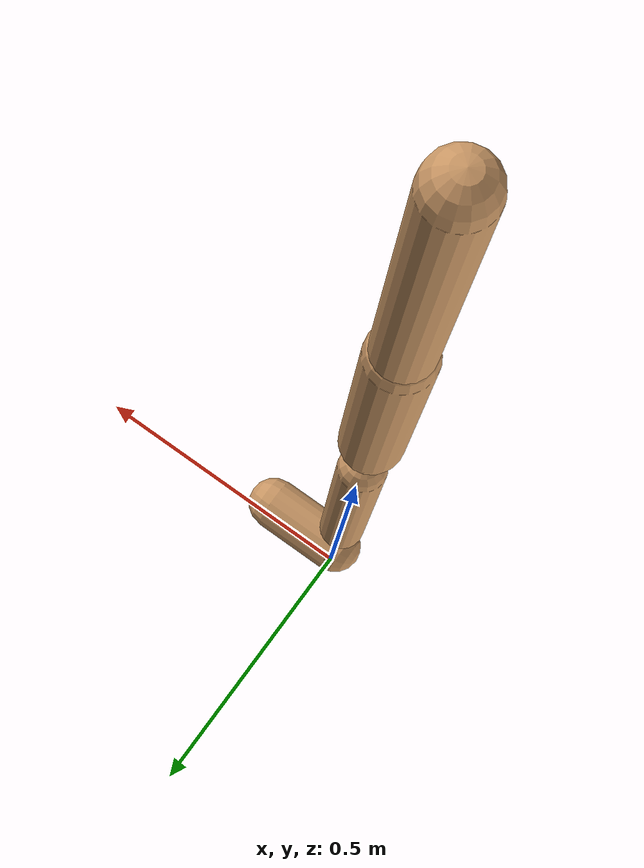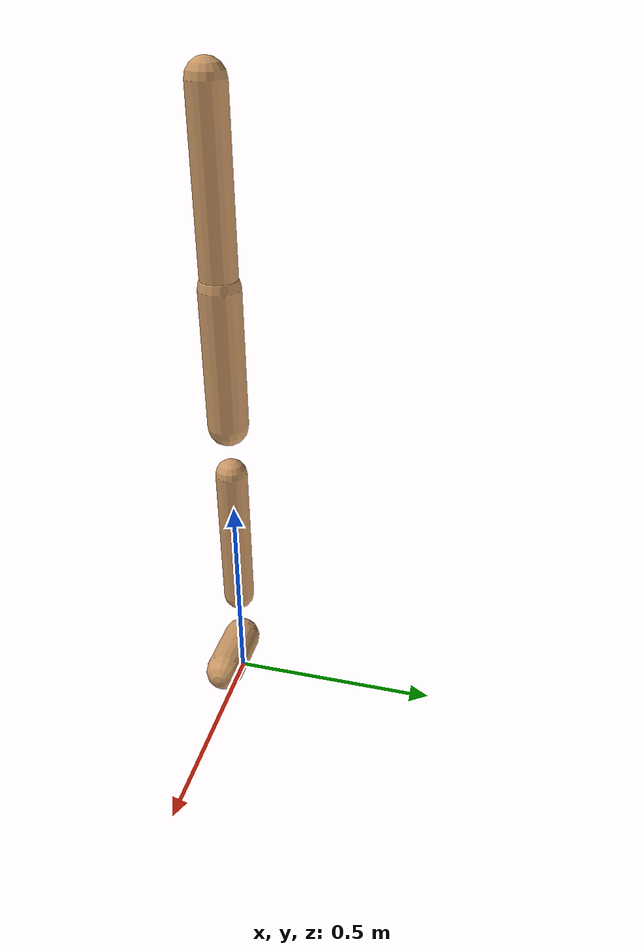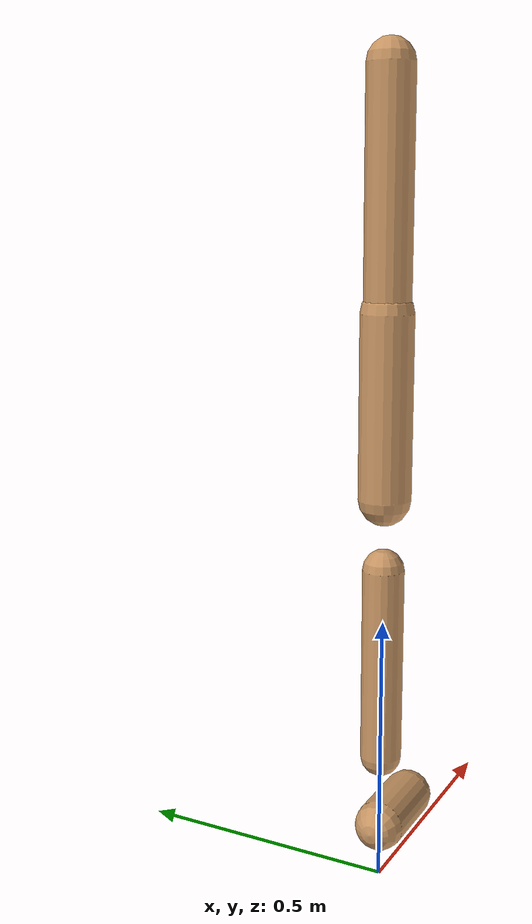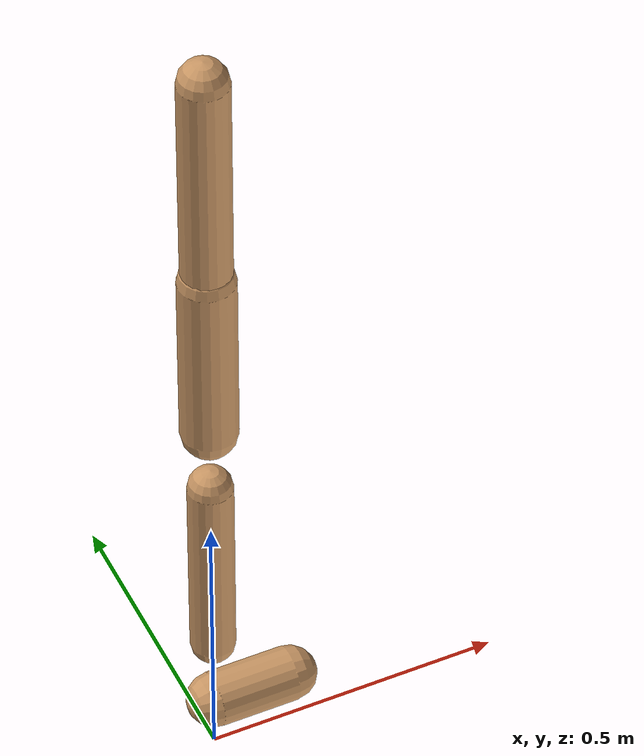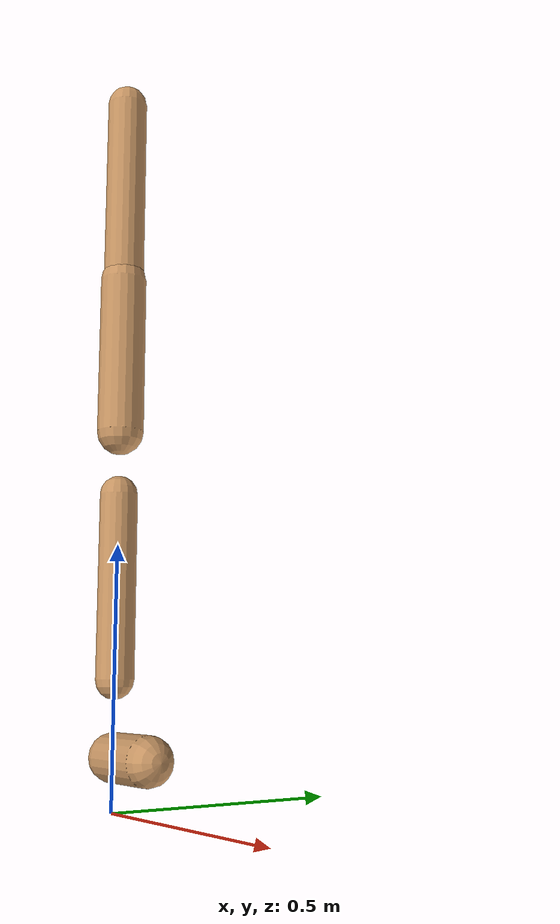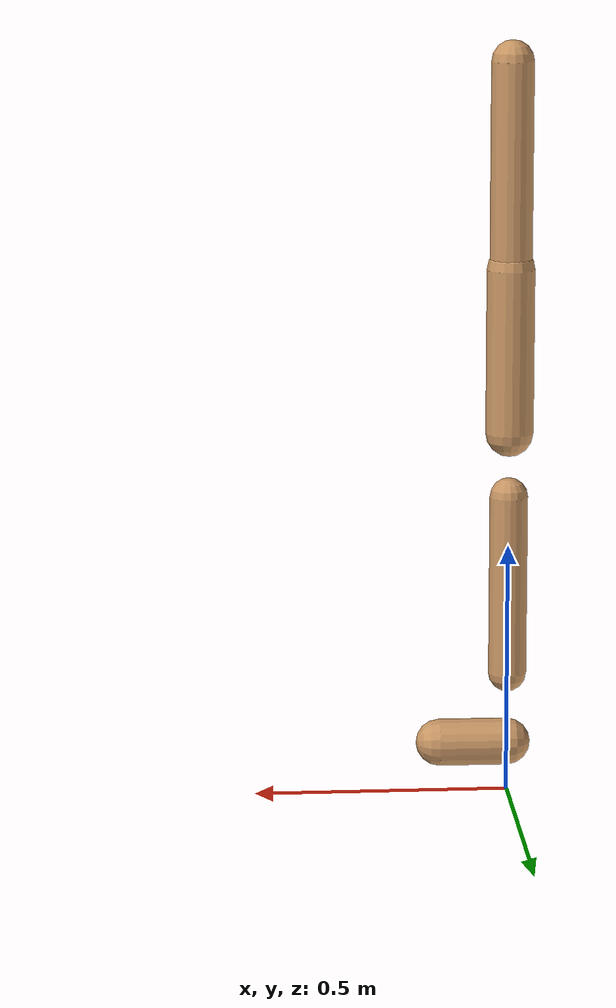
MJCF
<mujoco model="walker2d">
  <compiler angle="degree" coordinate="global" inertiafromgeom="true" />
  <default>
    <joint armature="0.01" damping=".1" limited="true" />
    <geom conaffinity="0" condim="3" contype="1" density="1000" friction="0.8 .1 .1" rgba="0.8 0.6 .4 1" />
  </default>
  <option integrator="RK4" timestep="0.002" />
  <worldbody>

    <body name="torso" pos="0 0 -0.2708926933148778">
      <joint armature="0" axis="1 0 0" damping="0" limited="false" name="ignorex" pos="0 0 0" stiffness="0" type="slide" />
      <joint armature="0" axis="0 0 1" damping="0" limited="false" name="ignorez" pos="0 0 0" ref="1.25" stiffness="0" type="slide" />
      <joint armature="0" axis="0 1 0" damping="0" limited="false" name="ignorey" pos="0 0 0" stiffness="0" type="hinge" />
      <geom fromto="0 0 1.45 0 0 1.05" name="torso_geom" size="0.041313627434891156" type="capsule" />
      <body name="thigh">
        <joint axis="0 -1 0" name="thigh_joint" pos="0 0 1.05" range="-150 0" type="hinge" />
        <geom fromto="0.0 0.0 1.05 0.0 0.0 0.7283175915702053" name="thigh_geom" size="0.04681155171760762" type="capsule" />
        <body name="leg" pos="0.0 0.0 0.12831759157020528">
          <joint axis="0 -1 0" name="leg_joint" pos="0 0 0.6" range="-150 0" type="hinge" />
          <geom fromto="0.0 0.0 0.6 0.0 0.0 0.24257510174467253" name="leg_geom" size="0.0374492413740861" type="capsule" />
          <body name="foot" pos="0.0 0.0 0.14257510174467253">
            <joint axis="0 -1 0" name="foot_joint" pos="0 0 0.1" range="-45 45" type="hinge" />
            <geom fromto="0.0 0.0 0.1 0.13451156070880593 0.0 0.1" name="foot_geom" size="0.046086112811017745" type="capsule" />
          </body>
        </body>
      </body>

      <body name="thigh_left">
        <joint axis="0 -1 0" name="thigh_left_joint" pos="0 0 1.05" range="-150 0" type="hinge" />
        <geom fromto="0.0 0.0 1.05 0.0 0.0 0.7283175915702053" name="thigh_left_geom" rgba=".7 .3 .6 1" size="0.04681155171760762" type="capsule" />
        <body name="leg_left" pos="0.0 0.0 0.12831759157020528">
          <joint axis="0 -1 0" name="leg_left_joint" pos="0 0 0.6" range="-150 0" type="hinge" />
          <geom fromto="0.0 0.0 0.6 0.0 0.0 0.24257510174467253" name="leg_left_geom" rgba=".7 .3 .6 1" size="0.0374492413740861" type="capsule" />
          <body name="foot_left" pos="0.0 0.0 0.14257510174467253">
            <joint axis="0 -1 0" name="foot_left_joint" pos="0 0 0.1" range="-45 45" type="hinge" />
            <geom fromto="0.0 0.0 0.1 0.13451156070880593 0.0 0.1" name="foot_left_geom" rgba=".7 .3 .6 1" size="0.046086112811017745" type="capsule" />
          </body>
        </body>
      </body>
    </body>
  </worldbody>
  <actuator>

    <motor ctrllimited="true" ctrlrange="-1.0 1.0" gear="100" joint="thigh_joint" />
    <motor ctrllimited="true" ctrlrange="-1.0 1.0" gear="100" joint="leg_joint" />
    <motor ctrllimited="true" ctrlrange="-1.0 1.0" gear="100" joint="foot_joint" />
    <motor ctrllimited="true" ctrlrange="-1.0 1.0" gear="100" joint="thigh_left_joint" />
    <motor ctrllimited="true" ctrlrange="-1.0 1.0" gear="100" joint="leg_left_joint" />
    <motor ctrllimited="true" ctrlrange="-1.0 1.0" gear="100" joint="foot_left_joint" />

  </actuator>
</mujoco>
